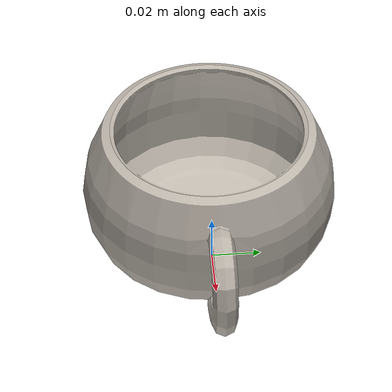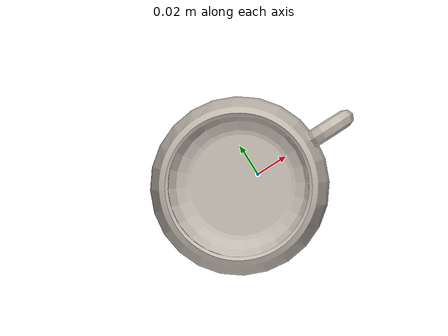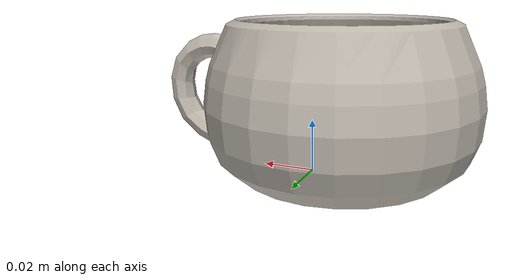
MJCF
<mujoco model="mug_67">
  <compiler angle="radian"/>
  <default>
    <default class="visual">
      <geom group="1" type="mesh" contype="0" conaffinity="0" mass="0.01"/>
    </default>
    <default class="collision">
      <geom group="0" solimp="0.998 0.998 0.001" solref="0.001 2" mass="0.01"/>
    </default>
    <default class="keypoint">
      <site type="sphere" size="0.01" group="3" rgba="1 0 0 1"/>
    </default>
    <default class="grasppoint">
      <site type="sphere" size="0.01" group="4" rgba="0 0 1 0.2"/>
    </default>
  </default>
  <asset>
    <mesh file="visual/model_normalized_0.obj" name="model_normalized_0_vis" scale="0.125 0.125 0.125" refquat="0.7071067811865475 0.0 0.0 0.7071067811865476"/>
    <mesh file="collision/model_normalized_collision_22.obj" name="model_normalized_collision_22._coll" scale="0.125 0.125 0.125" refquat="0.7071067811865475 0.0 0.0 0.7071067811865476"/>
    <mesh file="collision/model_normalized_collision_23.obj" name="model_normalized_collision_23._coll" scale="0.125 0.125 0.125" refquat="0.7071067811865475 0.0 0.0 0.7071067811865476"/>
    <mesh file="collision/model_normalized_collision_21.obj" name="model_normalized_collision_21._coll" scale="0.125 0.125 0.125" refquat="0.7071067811865475 0.0 0.0 0.7071067811865476"/>
    <mesh file="collision/model_normalized_collision_20.obj" name="model_normalized_collision_20._coll" scale="0.125 0.125 0.125" refquat="0.7071067811865475 0.0 0.0 0.7071067811865476"/>
    <mesh file="collision/model_normalized_collision_24.obj" name="model_normalized_collision_24._coll" scale="0.125 0.125 0.125" refquat="0.7071067811865475 0.0 0.0 0.7071067811865476"/>
    <mesh file="collision/model_normalized_collision_30.obj" name="model_normalized_collision_30._coll" scale="0.125 0.125 0.125" refquat="0.7071067811865475 0.0 0.0 0.7071067811865476"/>
    <mesh file="collision/model_normalized_collision_18.obj" name="model_normalized_collision_18._coll" scale="0.125 0.125 0.125" refquat="0.7071067811865475 0.0 0.0 0.7071067811865476"/>
    <mesh file="collision/model_normalized_collision_19.obj" name="model_normalized_collision_19._coll" scale="0.125 0.125 0.125" refquat="0.7071067811865475 0.0 0.0 0.7071067811865476"/>
    <mesh file="collision/model_normalized_collision_31.obj" name="model_normalized_collision_31._coll" scale="0.125 0.125 0.125" refquat="0.7071067811865475 0.0 0.0 0.7071067811865476"/>
    <mesh file="collision/model_normalized_collision_25.obj" name="model_normalized_collision_25._coll" scale="0.125 0.125 0.125" refquat="0.7071067811865475 0.0 0.0 0.7071067811865476"/>
    <mesh file="collision/model_normalized_collision_27.obj" name="model_normalized_collision_27._coll" scale="0.125 0.125 0.125" refquat="0.7071067811865475 0.0 0.0 0.7071067811865476"/>
    <mesh file="collision/model_normalized_collision_26.obj" name="model_normalized_collision_26._coll" scale="0.125 0.125 0.125" refquat="0.7071067811865475 0.0 0.0 0.7071067811865476"/>
    <mesh file="collision/model_normalized_collision_9.obj" name="model_normalized_collision_9._coll" scale="0.125 0.125 0.125" refquat="0.7071067811865475 0.0 0.0 0.7071067811865476"/>
    <mesh file="collision/model_normalized_collision_8.obj" name="model_normalized_collision_8._coll" scale="0.125 0.125 0.125" refquat="0.7071067811865475 0.0 0.0 0.7071067811865476"/>
    <mesh file="collision/model_normalized_collision_6.obj" name="model_normalized_collision_6._coll" scale="0.125 0.125 0.125" refquat="0.7071067811865475 0.0 0.0 0.7071067811865476"/>
    <mesh file="collision/model_normalized_collision_7.obj" name="model_normalized_collision_7._coll" scale="0.125 0.125 0.125" refquat="0.7071067811865475 0.0 0.0 0.7071067811865476"/>
    <mesh file="collision/model_normalized_collision_5.obj" name="model_normalized_collision_5._coll" scale="0.125 0.125 0.125" refquat="0.7071067811865475 0.0 0.0 0.7071067811865476"/>
    <mesh file="collision/model_normalized_collision_4.obj" name="model_normalized_collision_4._coll" scale="0.125 0.125 0.125" refquat="0.7071067811865475 0.0 0.0 0.7071067811865476"/>
    <mesh file="collision/model_normalized_collision_0.obj" name="model_normalized_collision_0._coll" scale="0.125 0.125 0.125" refquat="0.7071067811865475 0.0 0.0 0.7071067811865476"/>
    <mesh file="collision/model_normalized_collision_1.obj" name="model_normalized_collision_1._coll" scale="0.125 0.125 0.125" refquat="0.7071067811865475 0.0 0.0 0.7071067811865476"/>
    <mesh file="collision/model_normalized_collision_3.obj" name="model_normalized_collision_3._coll" scale="0.125 0.125 0.125" refquat="0.7071067811865475 0.0 0.0 0.7071067811865476"/>
    <mesh file="collision/model_normalized_collision_2.obj" name="model_normalized_collision_2._coll" scale="0.125 0.125 0.125" refquat="0.7071067811865475 0.0 0.0 0.7071067811865476"/>
    <mesh file="collision/model_normalized_collision_17.obj" name="model_normalized_collision_17._coll" scale="0.125 0.125 0.125" refquat="0.7071067811865475 0.0 0.0 0.7071067811865476"/>
    <mesh file="collision/model_normalized_collision_16.obj" name="model_normalized_collision_16._coll" scale="0.125 0.125 0.125" refquat="0.7071067811865475 0.0 0.0 0.7071067811865476"/>
    <mesh file="collision/model_normalized_collision_28.obj" name="model_normalized_collision_28._coll" scale="0.125 0.125 0.125" refquat="0.7071067811865475 0.0 0.0 0.7071067811865476"/>
    <mesh file="collision/model_normalized_collision_14.obj" name="model_normalized_collision_14._coll" scale="0.125 0.125 0.125" refquat="0.7071067811865475 0.0 0.0 0.7071067811865476"/>
    <mesh file="collision/model_normalized_collision_15.obj" name="model_normalized_collision_15._coll" scale="0.125 0.125 0.125" refquat="0.7071067811865475 0.0 0.0 0.7071067811865476"/>
    <mesh file="collision/model_normalized_collision_29.obj" name="model_normalized_collision_29._coll" scale="0.125 0.125 0.125" refquat="0.7071067811865475 0.0 0.0 0.7071067811865476"/>
    <mesh file="collision/model_normalized_collision_11.obj" name="model_normalized_collision_11._coll" scale="0.125 0.125 0.125" refquat="0.7071067811865475 0.0 0.0 0.7071067811865476"/>
    <mesh file="collision/model_normalized_collision_10.obj" name="model_normalized_collision_10._coll" scale="0.125 0.125 0.125" refquat="0.7071067811865475 0.0 0.0 0.7071067811865476"/>
    <mesh file="collision/model_normalized_collision_12.obj" name="model_normalized_collision_12._coll" scale="0.125 0.125 0.125" refquat="0.7071067811865475 0.0 0.0 0.7071067811865476"/>
    <mesh file="collision/model_normalized_collision_13.obj" name="model_normalized_collision_13._coll" scale="0.125 0.125 0.125" refquat="0.7071067811865475 0.0 0.0 0.7071067811865476"/>
    <texture type="2d" name="image0" file="visual/image0.png"/>
    <material name="Subajelly_material" texture="image0" specular="0.5" shininess="0.006280824"/>
  </asset>
  <worldbody>
  <body>
      <body name="object" pos="0 0 0.03" euler="0 0 1.57">
        <geom type="mesh" mesh="model_normalized_0_vis" class="visual" material="Subajelly_material"/>
        <geom type="mesh" mesh="model_normalized_collision_22._coll" class="collision" rgba="0.8 0.8 0.8 0.0"/>
        <geom type="mesh" mesh="model_normalized_collision_23._coll" class="collision" rgba="0.8 0.8 0.8 0.0"/>
        <geom type="mesh" mesh="model_normalized_collision_21._coll" class="collision" rgba="0.8 0.8 0.8 0.0"/>
        <geom type="mesh" mesh="model_normalized_collision_20._coll" class="collision" rgba="0.8 0.8 0.8 0.0"/>
        <geom type="mesh" mesh="model_normalized_collision_24._coll" class="collision" rgba="0.8 0.8 0.8 0.0"/>
        <geom type="mesh" mesh="model_normalized_collision_30._coll" class="collision" rgba="0.8 0.8 0.8 0.0"/>
        <geom type="mesh" mesh="model_normalized_collision_18._coll" class="collision" rgba="0.8 0.8 0.8 0.0"/>
        <geom type="mesh" mesh="model_normalized_collision_19._coll" class="collision" rgba="0.8 0.8 0.8 0.0"/>
        <geom type="mesh" mesh="model_normalized_collision_31._coll" class="collision" rgba="0.8 0.8 0.8 0.0"/>
        <geom type="mesh" mesh="model_normalized_collision_25._coll" class="collision" rgba="0.8 0.8 0.8 0.0"/>
        <geom type="mesh" mesh="model_normalized_collision_27._coll" class="collision" rgba="0.8 0.8 0.8 0.0"/>
        <geom type="mesh" mesh="model_normalized_collision_26._coll" class="collision" rgba="0.8 0.8 0.8 0.0"/>
        <geom type="mesh" mesh="model_normalized_collision_9._coll" class="collision" rgba="0.8 0.8 0.8 0.0"/>
        <geom type="mesh" mesh="model_normalized_collision_8._coll" class="collision" rgba="0.8 0.8 0.8 0.0"/>
        <geom type="mesh" mesh="model_normalized_collision_6._coll" class="collision" rgba="0.8 0.8 0.8 0.0"/>
        <geom type="mesh" mesh="model_normalized_collision_7._coll" class="collision" rgba="0.8 0.8 0.8 0.0"/>
        <geom type="mesh" mesh="model_normalized_collision_5._coll" class="collision" rgba="0.8 0.8 0.8 0.0"/>
        <geom type="mesh" mesh="model_normalized_collision_4._coll" class="collision" rgba="0.8 0.8 0.8 0.0"/>
        <geom type="mesh" mesh="model_normalized_collision_0._coll" class="collision" rgba="0.8 0.8 0.8 0.0"/>
        <geom type="mesh" mesh="model_normalized_collision_1._coll" class="collision" rgba="0.8 0.8 0.8 0.0"/>
        <geom type="mesh" mesh="model_normalized_collision_3._coll" class="collision" rgba="0.8 0.8 0.8 0.0"/>
        <geom type="mesh" mesh="model_normalized_collision_2._coll" class="collision" rgba="0.8 0.8 0.8 0.0"/>
        <geom type="mesh" mesh="model_normalized_collision_17._coll" class="collision" rgba="0.8 0.8 0.8 0.0"/>
        <geom type="mesh" mesh="model_normalized_collision_16._coll" class="collision" rgba="0.8 0.8 0.8 0.0"/>
        <geom type="mesh" mesh="model_normalized_collision_28._coll" class="collision" rgba="0.8 0.8 0.8 0.0"/>
        <geom type="mesh" mesh="model_normalized_collision_14._coll" class="collision" rgba="0.8 0.8 0.8 0.0"/>
        <geom type="mesh" mesh="model_normalized_collision_15._coll" class="collision" rgba="0.8 0.8 0.8 0.0"/>
        <geom type="mesh" mesh="model_normalized_collision_29._coll" class="collision" rgba="0.8 0.8 0.8 0.0"/>
        <geom type="mesh" mesh="model_normalized_collision_11._coll" class="collision" rgba="0.8 0.8 0.8 0.0"/>
        <geom type="mesh" mesh="model_normalized_collision_10._coll" class="collision" rgba="0.8 0.8 0.8 0.0"/>
        <geom type="mesh" mesh="model_normalized_collision_12._coll" class="collision" rgba="0.8 0.8 0.8 0.0"/>
        <geom type="mesh" mesh="model_normalized_collision_13._coll" class="collision" rgba="0.8 0.8 0.8 0.0"/>
      </body>
      <site rgba="0 0 0 0" size="0.005" pos="-0.00013714249999999956 -7.939187500000111e-05 -0.02866069875" name="bottom_site"/>
      <site rgba="0 0 0 0" size="0.005" pos="-0.00013714249999999956 -7.939187500000111e-05 0.02852115" name="top_site"/>
      <site rgba="0 0 0 0" size="0.005" pos="0.04922233625 0.06134699625 -6.977437500000142e-05" name="horizontal_radius_site"/>
      <site class="grasppoint" pos="0.055 0 0.03"/>
    </body>
    </worldbody>
</mujoco>
